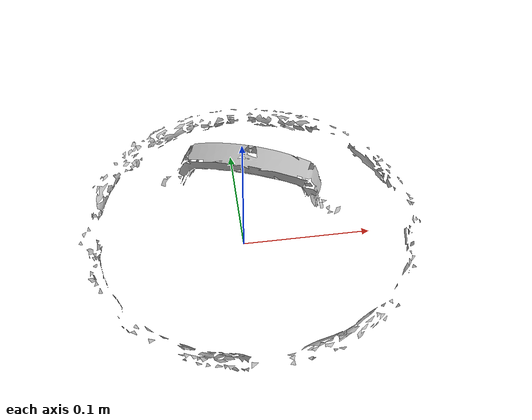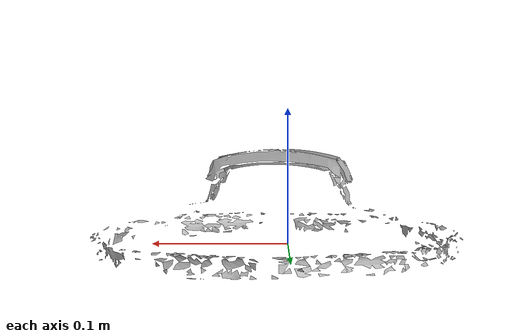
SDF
<?xml version="1.0" ?>
<sdf version="1.4">
  <model name='ycb_028_skillet_lid'>
    <link name='body'>
      <inertial>
        <mass>0.652</mass>
        <pose>0.00461489752315 0.0283196515633 0.0200988969913 0 0 0</pose>
        <inertia>
          <ixx>0.00439016291787</ixx>
          <ixy>0.000240987324131</ixy>
          <ixz>-2.36591909086e-06</ixz>
          <iyy>0.00422226874237</iyy>
          <iyz>3.2029859135e-05</iyz>
          <izz>0.00785571811851</izz>
        </inertia>
      </inertial>
      <visual name='ycb_028_skillet_lid_visual'>
        <pose>0 0 0 0 0 0</pose>
        <geometry>
          <mesh>
            <uri>model://ycb_028_skillet_lid/meshes/textured.dae</uri>
          </mesh>
        </geometry>
      </visual>
      <collision name='ycb_028_skillet_lid_collision'>
        <pose>0 0 0 0 0 0</pose>
        <geometry>
          <mesh>
            <uri>model://ycb_028_skillet_lid/meshes/nontextured.stl</uri>
          </mesh>
        </geometry>
        <max_contacts>10</max_contacts>
      </collision>
    </link>
  </model>
</sdf>
